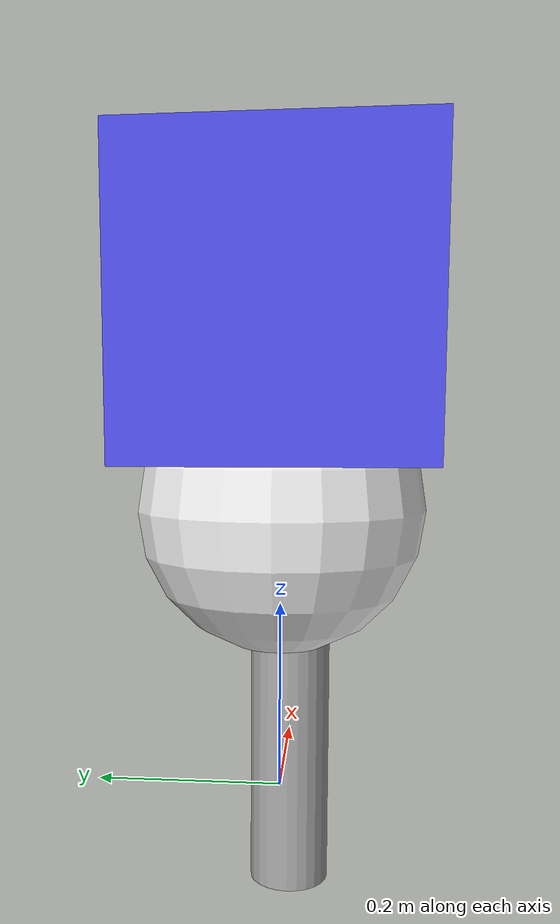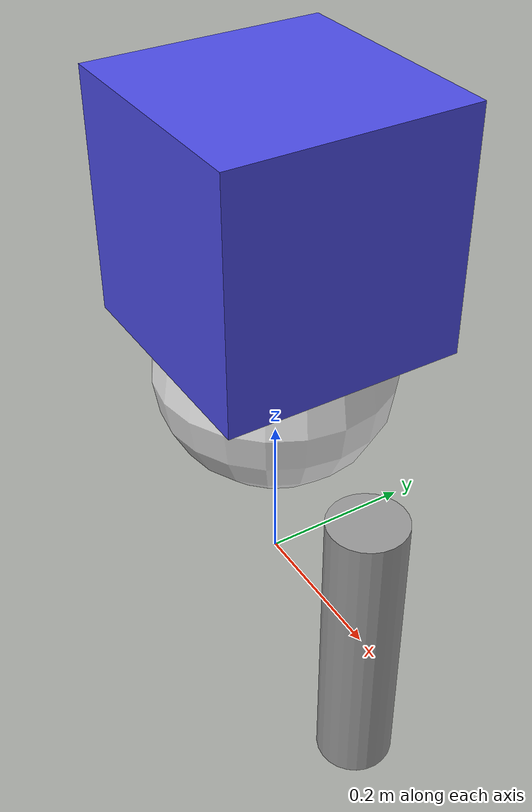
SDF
<?xml version="1.0" ?>
<sdf version="1.7">
  <model name="basic_humanoid">
    <link name="base_link">
      <pose>0 0 0.5 0 0 0</pose>
      <inertial>
        <mass>10.0</mass>
        <inertia>
          <ixx>0.1</ixx>
          <ixy>0.0</ixy>
          <ixz>0.0</ixz>
          <iyy>0.1</iyy>
          <iyz>0.0</iyz>
          <izz>0.1</izz>
        </inertia>
      </inertial>
      <visual name="visual">
        <geometry>
          <box>
            <size>0.3 0.3 0.3</size>
          </box>
        </geometry>
        <material>
          <ambient>0.2 0.2 0.8 1.0</ambient>
          <diffuse>0.3 0.3 0.9 1.0</diffuse>
        </material>
      </visual>
      <collision name="collision">
        <geometry>
          <box>
            <size>0.3 0.3 0.3</size>
          </box>
        </geometry>
      </collision>
    </link>

    <link name="head">
      <pose>0 0 0.3 0 0 0</pose>
      <inertial>
        <mass>2.0</mass>
        <inertia>
          <ixx>0.01</ixx>
          <ixy>0.0</ixy>
          <ixz>0.0</ixz>
          <iyy>0.01</iyy>
          <iyz>0.0</iyz>
          <izz>0.01</izz>
        </inertia>
      </inertial>
      <visual name="visual">
        <geometry>
          <sphere>
            <radius>0.15</radius>
          </sphere>
        </geometry>
        <material>
          <ambient>0.8 0.8 0.8 1.0</ambient>
          <diffuse>0.9 0.9 0.9 1.0</diffuse>
        </material>
      </visual>
      <collision name="collision">
        <geometry>
          <sphere>
            <radius>0.15</radius>
          </sphere>
        </geometry>
      </collision>
    </link>

    <joint name="neck_joint" type="revolute">
      <parent>base_link</parent>
      <child>head</child>
      <axis>
        <xyz>0 0 1</xyz>
        <limit>
          <lower>-0.5</lower>
          <upper>0.5</upper>
          <effort>100</effort>
          <velocity>1</velocity>
        </limit>
      </axis>
      <pose>0 0 0.3 0 0 0</pose>
    </joint>

    <link name="left_arm">
      <pose>0.2 0 0 0 0 0</pose>
      <inertial>
        <mass>1.0</mass>
        <inertia>
          <ixx>0.01</ixx>
          <ixy>0.0</ixy>
          <ixz>0.0</ixz>
          <iyy>0.01</iyy>
          <iyz>0.0</iyz>
          <izz>0.001</izz>
        </inertia>
      </inertial>
      <visual name="visual">
        <geometry>
          <cylinder>
            <radius>0.05</radius>
            <length>0.4</length>
          </cylinder>
        </geometry>
        <material>
          <ambient>0.5 0.5 0.5 1.0</ambient>
          <diffuse>0.6 0.6 0.6 1.0</diffuse>
        </material>
      </visual>
      <collision name="collision">
        <geometry>
          <cylinder>
            <radius>0.05</radius>
            <length>0.4</length>
          </cylinder>
        </geometry>
      </collision>
    </link>

    <joint name="left_shoulder" type="revolute">
      <parent>base_link</parent>
      <child>left_arm</child>
      <axis>
        <xyz>0 1 0</xyz>
        <limit>
          <lower>-1.57</lower>
          <upper>1.57</upper>
          <effort>50</effort>
          <velocity>2</velocity>
        </limit>
      </axis>
      <pose>0.2 0 0 0 0 0</pose>
    </joint>

    <plugin name="gazebo_ros2_control" filename="libgazebo_ros2_control.so">
      <parameters>$(find basic_humanoid_description)/config/basic_humanoid_control.yaml</parameters>
    </plugin>
  </model>
</sdf>
